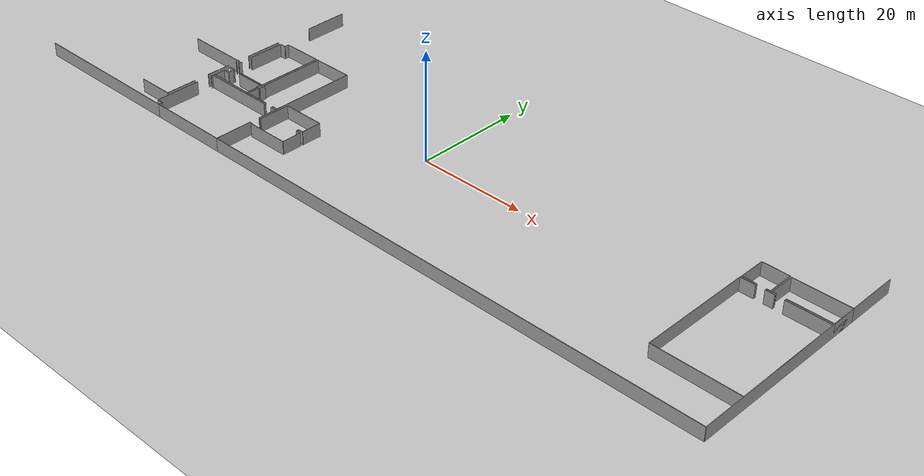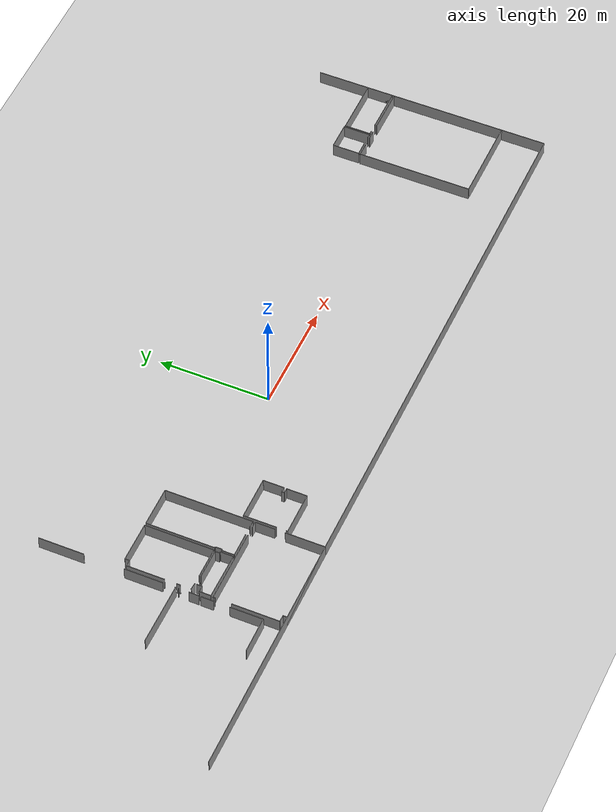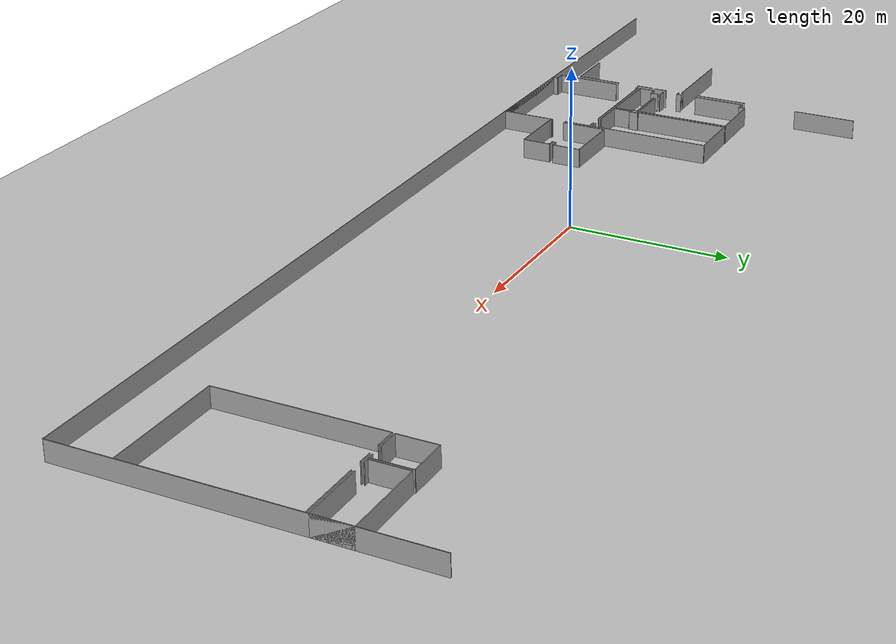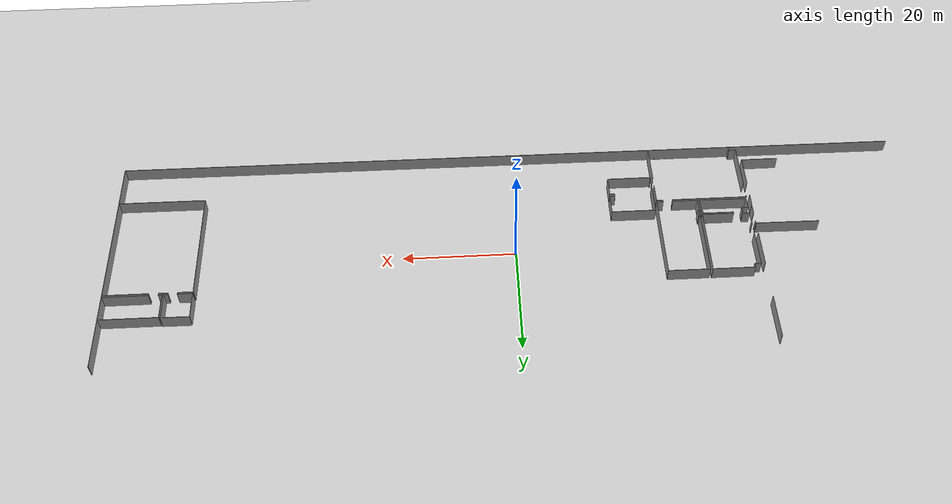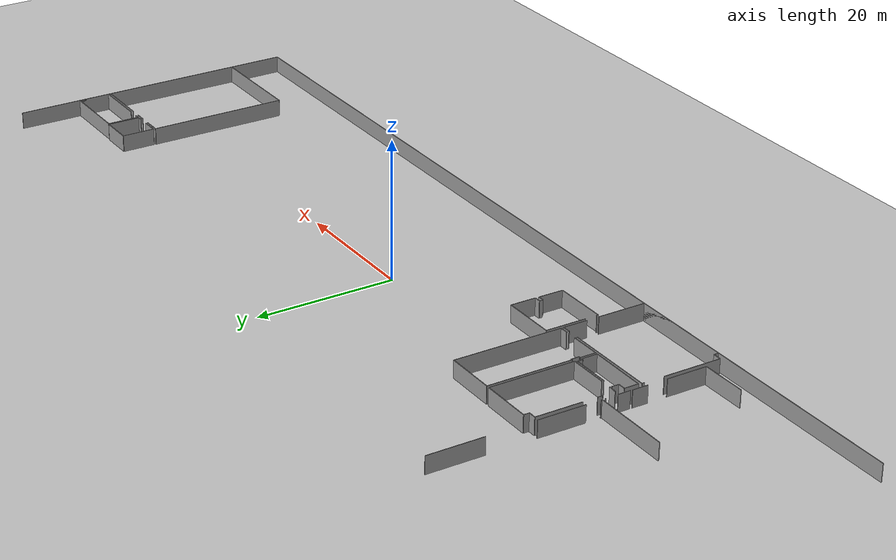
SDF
<sdf version="1.6">
 <world name="default">
  <model name="ground_plane">
   <static>1</static>
   <link name="link">
    <collision name="collision">
     <geometry><plane><normal>0 0 1</normal><size>100 100</size></plane></geometry>
     <surface><friction><ode><mu>100</mu><mu2>50</mu2></ode></friction></surface>
    </collision>
    <visual name="visual">
     <cast_shadows>0</cast_shadows>
     <geometry><plane><normal>0 0 1</normal><size>100 100</size></plane></geometry>
     <material>
      <script><uri>file://media/materials/scripts/gazebo.material</uri><name>Gazebo/Grey</name></script>
     </material>
    </visual>
   </link>
  </model>
  <model name="0510035738_A_40_1_101">
   <static>1</static>
   <link name="Wall_17">
    <collision name="Wall_17_Collision">
     <geometry><box><size>8.17298779791 0.1 2.5</size></box></geometry>
     <pose>4.08649389896 0 1.25 0 0 0</pose>
    </collision>
    <visual name="Wall_17_Visual">
     <pose>4.08649389896 0 1.25 0 0 0</pose>
     <geometry><box><size>8.17298779791 0.1 2.5</size></box></geometry>
     <material>
      <script><uri>file://media/materials/scripts/gazebo.material</uri><name>Gazebo/Grey</name></script>
      <ambient>1 1 1 1</ambient>
     </material>
    </visual>
    <pose>27.8733318943 -0.0208235458435 0 0 0 -1.57079632679</pose>
   </link>
   <link name="Wall_46">
    <collision name="Wall_46_Collision">
     <geometry><box><size>0.121639981208 0.1 2.5</size></box></geometry>
     <pose>0.060819990604 0 1.25 0 0 0</pose>
    </collision>
    <visual name="Wall_46_Visual">
     <pose>0.060819990604 0 1.25 0 0 0</pose>
     <geometry><box><size>0.121639981208 0.1 2.5</size></box></geometry>
     <material>
      <script><uri>file://media/materials/scripts/gazebo.material</uri><name>Gazebo/Grey</name></script>
      <ambient>1 1 1 1</ambient>
     </material>
    </visual>
    <pose>27.8941554402 -24.8925174905 0 0 0 -1.57079632679</pose>
   </link>
   <link name="Wall_47">
    <collision name="Wall_47_Collision">
     <geometry><box><size>1.7900631055 0.1 2.5</size></box></geometry>
     <pose>0.895031552751 0 1.25 0 0 0</pose>
    </collision>
    <visual name="Wall_47_Visual">
     <pose>0.895031552751 0 1.25 0 0 0</pose>
     <geometry><box><size>1.7900631055 0.1 2.5</size></box></geometry>
     <material>
      <script><uri>file://media/materials/scripts/gazebo.material</uri><name>Gazebo/Grey</name></script>
      <ambient>1 1 1 1</ambient>
     </material>
    </visual>
    <pose>27.8941554402 -26.7706997473 0 0 0 -1.57079632679</pose>
   </link>
   <link name="Wall_52">
    <collision name="Wall_52_Collision">
     <geometry><box><size>6.86770699747 0.1 2.5</size></box></geometry>
     <pose>3.43385349874 0 1.25 0 0 0</pose>
    </collision>
    <visual name="Wall_52_Visual">
     <pose>3.43385349874 0 1.25 0 0 0</pose>
     <geometry><box><size>6.86770699747 0.1 2.5</size></box></geometry>
     <material>
      <script><uri>file://media/materials/scripts/gazebo.material</uri><name>Gazebo/Grey</name></script>
      <ambient>1 1 1 1</ambient>
     </material>
    </visual>
    <pose>27.8796805363 -15.3240981754 0 0 0 -1.57079632679</pose>
   </link>
   <link name="Wall_53">
    <collision name="Wall_53_Collision">
     <geometry><box><size>0.166842312429 0.1 2.5</size></box></geometry>
     <pose>0.0834211562147 0 1.25 0 0 0</pose>
    </collision>
    <visual name="Wall_53_Visual">
     <pose>0.0834211562147 0 1.25 0 0 0</pose>
     <geometry><box><size>0.166842312429 0.1 2.5</size></box></geometry>
     <material>
      <script><uri>file://media/materials/scripts/gazebo.material</uri><name>Gazebo/Grey</name></script>
      <ambient>1 1 1 1</ambient>
     </material>
    </visual>
    <pose>27.8796805363 -24.3031095649 0 0 0 -1.57079632679</pose>
   </link>
   <link name="Wall_54">
    <collision name="Wall_54_Collision">
     <geometry><box><size>11.296407675 0.1 2.5</size></box></geometry>
     <pose>5.64820383748 0 1.25 0 0 0</pose>
    </collision>
    <visual name="Wall_54_Visual">
     <pose>5.64820383748 0 1.25 0 0 0</pose>
     <geometry><box><size>11.296407675 0.1 2.5</size></box></geometry>
     <material>
      <script><uri>file://media/materials/scripts/gazebo.material</uri><name>Gazebo/Grey</name></script>
      <ambient>1 1 1 1</ambient>
     </material>
    </visual>
    <pose>27.8796805363 -24.4699518773 0 0 0 3.13657954449</pose>
   </link>
   <link name="Wall_55">
    <collision name="Wall_55_Collision">
     <geometry><box><size>0.66787714108 0.1 2.5</size></box></geometry>
     <pose>0.33393857054 0 1.25 0 0 0</pose>
    </collision>
    <visual name="Wall_55_Visual">
     <pose>0.33393857054 0 1.25 0 0 0</pose>
     <geometry><box><size>0.66787714108 0.1 2.5</size></box></geometry>
     <material>
      <script><uri>file://media/materials/scripts/gazebo.material</uri><name>Gazebo/Grey</name></script>
      <ambient>1 1 1 1</ambient>
     </material>
    </visual>
    <pose>28.5909823889 -24.9709867059 0 0 0 1.57079632679</pose>
   </link>
   <link name="Wall_56">
    <collision name="Wall_56_Collision">
     <geometry><box><size>6.76231953985 0.1 2.5</size></box></geometry>
     <pose>3.38115976993 0 1.25 0 0 0</pose>
    </collision>
    <visual name="Wall_56_Visual">
     <pose>3.38115976993 0 1.25 0 0 0</pose>
     <geometry><box><size>6.76231953985 0.1 2.5</size></box></geometry>
     <material>
      <script><uri>file://media/materials/scripts/gazebo.material</uri><name>Gazebo/Grey</name></script>
      <ambient>1 1 1 1</ambient>
     </material>
    </visual>
    <pose>28.5909823889 -22.1991695976 0 0 0 1.57079632679</pose>
   </link>
   <link name="Wall_57">
    <collision name="Wall_57_Collision">
     <geometry><box><size>1.11355181127 0.1 2.5</size></box></geometry>
     <pose>0.556775905634 0 1.25 0 0 0</pose>
    </collision>
    <visual name="Wall_57_Visual">
     <pose>0.556775905634 0 1.25 0 0 0</pose>
     <geometry><box><size>1.11355181127 0.1 2.5</size></box></geometry>
     <material>
      <script><uri>file://media/materials/scripts/gazebo.material</uri><name>Gazebo/Grey</name></script>
      <ambient>1 1 1 1</ambient>
     </material>
    </visual>
    <pose>28.5909823889 -15.4368500578 0 0 0 0.0</pose>
   </link>
   <link name="Wall_58">
    <collision name="Wall_58_Collision">
     <geometry><box><size>0.818212984243 0.1 2.5</size></box></geometry>
     <pose>0.409106492121 0 1.25 0 0 0</pose>
    </collision>
    <visual name="Wall_58_Visual">
     <pose>0.409106492121 0 1.25 0 0 0</pose>
     <geometry><box><size>0.818212984243 0.1 2.5</size></box></geometry>
     <material>
      <script><uri>file://media/materials/scripts/gazebo.material</uri><name>Gazebo/Grey</name></script>
      <ambient>1 1 1 1</ambient>
     </material>
    </visual>
    <pose>29.7045342001 -15.4368500578 0 0 0 1.57079632679</pose>
   </link>
   <link name="Wall_59">
    <collision name="Wall_59_Collision">
     <geometry><box><size>7.3984534708 0.1 2.5</size></box></geometry>
     <pose>3.6992267354 0 1.25 0 0 0</pose>
    </collision>
    <visual name="Wall_59_Visual">
     <pose>3.6992267354 0 1.25 0 0 0</pose>
     <geometry><box><size>7.3984534708 0.1 2.5</size></box></geometry>
     <material>
      <script><uri>file://media/materials/scripts/gazebo.material</uri><name>Gazebo/Grey</name></script>
      <ambient>1 1 1 1</ambient>
     </material>
    </visual>
    <pose>29.7045342001 -14.6186370735 0 0 0 0.0</pose>
   </link>
   <link name="Wall_60">
    <collision name="Wall_60_Collision">
     <geometry><box><size>12.3460771741 0.1 2.5</size></box></geometry>
     <pose>6.17303858705 0 1.25 0 0 0</pose>
    </collision>
    <visual name="Wall_60_Visual">
     <pose>6.17303858705 0 1.25 0 0 0</pose>
     <geometry><box><size>12.3460771741 0.1 2.5</size></box></geometry>
     <material>
      <script><uri>file://media/materials/scripts/gazebo.material</uri><name>Gazebo/Grey</name></script>
      <ambient>1 1 1 1</ambient>
     </material>
    </visual>
    <pose>37.1029876709 -14.6186370735 0 0 0 -1.57079632679</pose>
   </link>
   <link name="Wall_61">
    <collision name="Wall_61_Collision">
     <geometry><box><size>5.66095712127 0.1 2.5</size></box></geometry>
     <pose>2.83047856064 0 1.25 0 0 0</pose>
    </collision>
    <visual name="Wall_61_Visual">
     <pose>2.83047856064 0 1.25 0 0 0</pose>
     <geometry><box><size>5.66095712127 0.1 2.5</size></box></geometry>
     <material>
      <script><uri>file://media/materials/scripts/gazebo.material</uri><name>Gazebo/Grey</name></script>
      <ambient>1 1 1 1</ambient>
     </material>
    </visual>
    <pose>37.1029876709 -26.9647142476 0 0 0 3.14159265359</pose>
   </link>
   <link name="Wall_62">
    <collision name="Wall_62_Collision">
     <geometry><box><size>1.23802246582 0.1 2.5</size></box></geometry>
     <pose>0.619011232909 0 1.25 0 0 0</pose>
    </collision>
    <visual name="Wall_62_Visual">
     <pose>0.619011232909 0 1.25 0 0 0</pose>
     <geometry><box><size>1.23802246582 0.1 2.5</size></box></geometry>
     <material>
      <script><uri>file://media/materials/scripts/gazebo.material</uri><name>Gazebo/Grey</name></script>
      <ambient>1 1 1 1</ambient>
     </material>
    </visual>
    <pose>29.8251583986 -26.9647142476 0 0 0 3.06274411815</pose>
   </link>
   <link name="Wall_63">
    <collision name="Wall_63_Collision">
     <geometry><box><size>2.06153103851 0.1 2.5</size></box></geometry>
     <pose>1.03076551926 0 1.25 0 0 0</pose>
    </collision>
    <visual name="Wall_63_Visual">
     <pose>1.03076551926 0 1.25 0 0 0</pose>
     <geometry><box><size>2.06153103851 0.1 2.5</size></box></geometry>
     <material>
      <script><uri>file://media/materials/scripts/gazebo.material</uri><name>Gazebo/Grey</name></script>
      <ambient>1 1 1 1</ambient>
     </material>
    </visual>
    <pose>28.6780857575 -30.3081630839 0 0 0 1.57079632679</pose>
   </link>
   <link name="Wall_64">
    <collision name="Wall_64_Collision">
     <geometry><box><size>1.10364792971 0.1 2.5</size></box></geometry>
     <pose>0.551823964854 0 1.25 0 0 0</pose>
    </collision>
    <visual name="Wall_64_Visual">
     <pose>0.551823964854 0 1.25 0 0 0</pose>
     <geometry><box><size>1.10364792971 0.1 2.5</size></box></geometry>
     <material>
      <script><uri>file://media/materials/scripts/gazebo.material</uri><name>Gazebo/Grey</name></script>
      <ambient>1 1 1 1</ambient>
     </material>
    </visual>
    <pose>28.6780857575 -28.2466320454 0 0 0 0.0</pose>
   </link>
   <link name="Wall_65">
    <collision name="Wall_65_Collision">
     <geometry><box><size>1.0020696573 0.1 2.5</size></box></geometry>
     <pose>0.50103482865 0 1.25 0 0 0</pose>
    </collision>
    <visual name="Wall_65_Visual">
     <pose>0.50103482865 0 1.25 0 0 0</pose>
     <geometry><box><size>1.0020696573 0.1 2.5</size></box></geometry>
     <material>
      <script><uri>file://media/materials/scripts/gazebo.material</uri><name>Gazebo/Grey</name></script>
      <ambient>1 1 1 1</ambient>
     </material>
    </visual>
    <pose>29.7817336872 -28.2466320454 0 0 0 1.57079632679</pose>
   </link>
   <link name="Wall_66">
    <collision name="Wall_66_Collision">
     <geometry><box><size>5.4933529718 0.1 2.5</size></box></geometry>
     <pose>2.7466764859 0 1.25 0 0 0</pose>
    </collision>
    <visual name="Wall_66_Visual">
     <pose>2.7466764859 0 1.25 0 0 0</pose>
     <geometry><box><size>5.4933529718 0.1 2.5</size></box></geometry>
     <material>
      <script><uri>file://media/materials/scripts/gazebo.material</uri><name>Gazebo/Grey</name></script>
      <ambient>1 1 1 1</ambient>
     </material>
    </visual>
    <pose>31.4245082977 -27.2445623881 0 0 0 0.0</pose>
   </link>
   <link name="Wall_67">
    <collision name="Wall_67_Collision">
     <geometry><box><size>0.781898751857 0.1 2.5</size></box></geometry>
     <pose>0.390949375928 0 1.25 0 0 0</pose>
    </collision>
    <visual name="Wall_67_Visual">
     <pose>0.390949375928 0 1.25 0 0 0</pose>
     <geometry><box><size>0.781898751857 0.1 2.5</size></box></geometry>
     <material>
      <script><uri>file://media/materials/scripts/gazebo.material</uri><name>Gazebo/Grey</name></script>
      <ambient>1 1 1 1</ambient>
     </material>
    </visual>
    <pose>36.9178612695 -27.2445623881 0 0 0 -1.57079632679</pose>
   </link>
   <link name="Wall_68">
    <collision name="Wall_68_Collision">
     <geometry><box><size>0.250390441485 0.1 2.5</size></box></geometry>
     <pose>0.125195220742 0 1.25 0 0 0</pose>
    </collision>
    <visual name="Wall_68_Visual">
     <pose>0.125195220742 0 1.25 0 0 0</pose>
     <geometry><box><size>0.250390441485 0.1 2.5</size></box></geometry>
     <material>
      <script><uri>file://media/materials/scripts/gazebo.material</uri><name>Gazebo/Grey</name></script>
      <ambient>1 1 1 1</ambient>
     </material>
    </visual>
    <pose>36.9178612695 -28.02646114 0 0 0 0.0</pose>
   </link>
   <link name="Wall_69">
    <collision name="Wall_69_Collision">
     <geometry><box><size>2.35433040873 0.1 2.5</size></box></geometry>
     <pose>1.17716520436 0 1.25 0 0 0</pose>
    </collision>
    <visual name="Wall_69_Visual">
     <pose>1.17716520436 0 1.25 0 0 0</pose>
     <geometry><box><size>2.35433040873 0.1 2.5</size></box></geometry>
     <material>
      <script><uri>file://media/materials/scripts/gazebo.material</uri><name>Gazebo/Grey</name></script>
      <ambient>1 1 1 1</ambient>
     </material>
    </visual>
    <pose>37.168251711 -28.02646114 0 0 0 -1.57079632679</pose>
   </link>
   <link name="Wall_70">
    <collision name="Wall_70_Collision">
     <geometry><box><size>8.4904765951 0.1 2.5</size></box></geometry>
     <pose>4.24523829755 0 1.25 0 0 0</pose>
    </collision>
    <visual name="Wall_70_Visual">
     <pose>4.24523829755 0 1.25 0 0 0</pose>
     <geometry><box><size>8.4904765951 0.1 2.5</size></box></geometry>
     <material>
      <script><uri>file://media/materials/scripts/gazebo.material</uri><name>Gazebo/Grey</name></script>
      <ambient>1 1 1 1</ambient>
     </material>
    </visual>
    <pose>37.168251711 -30.3807915487 0 0 0 3.13303843997</pose>
   </link>
   <link name="Wall_79">
    <collision name="Wall_79_Collision">
     <geometry><box><size>2.28982820575 0.1 2.5</size></box></geometry>
     <pose>1.14491410287 0 1.25 0 0 0</pose>
    </collision>
    <visual name="Wall_79_Visual">
     <pose>1.14491410287 0 1.25 0 0 0</pose>
     <geometry><box><size>2.28982820575 0.1 2.5</size></box></geometry>
     <material>
      <script><uri>file://media/materials/scripts/gazebo.material</uri><name>Gazebo/Grey</name></script>
      <ambient>1 1 1 1</ambient>
     </material>
    </visual>
    <pose>27.8606346103 -28.8446741242 0 0 0 -1.57079632679</pose>
   </link>
   <link name="Wall_80">
    <collision name="Wall_80_Collision">
     <geometry><box><size>5.83084678187 0.1 2.5</size></box></geometry>
     <pose>2.91542339094 0 1.25 0 0 0</pose>
    </collision>
    <visual name="Wall_80_Visual">
     <pose>2.91542339094 0 1.25 0 0 0</pose>
     <geometry><box><size>5.83084678187 0.1 2.5</size></box></geometry>
     <material>
      <script><uri>file://media/materials/scripts/gazebo.material</uri><name>Gazebo/Grey</name></script>
      <ambient>1 1 1 1</ambient>
     </material>
    </visual>
    <pose>27.8606346103 -33.9672664017 0 0 0 -1.57079632679</pose>
   </link>
   <link name="Wall_81">
    <collision name="Wall_81_Collision">
     <geometry><box><size>6.62807762516 0.1 2.5</size></box></geometry>
     <pose>3.31403881258 0 1.25 0 0 0</pose>
    </collision>
    <visual name="Wall_81_Visual">
     <pose>3.31403881258 0 1.25 0 0 0</pose>
     <geometry><box><size>6.62807762516 0.1 2.5</size></box></geometry>
     <material>
      <script><uri>file://media/materials/scripts/gazebo.material</uri><name>Gazebo/Grey</name></script>
      <ambient>1 1 1 1</ambient>
     </material>
    </visual>
    <pose>27.8606346103 -39.7981131836 0 0 0 -3.13622872036</pose>
   </link>
   <link name="Wall_94">
    <collision name="Wall_94_Collision">
     <geometry><box><size>8.39874550834 0.1 2.5</size></box></geometry>
     <pose>4.19937275417 0 1.25 0 0 0</pose>
    </collision>
    <visual name="Wall_94_Visual">
     <pose>4.19937275417 0 1.25 0 0 0</pose>
     <geometry><box><size>8.39874550834 0.1 2.5</size></box></geometry>
     <material>
      <script><uri>file://media/materials/scripts/gazebo.material</uri><name>Gazebo/Grey</name></script>
      <ambient>1 1 1 1</ambient>
     </material>
    </visual>
    <pose>28.5358761761 -42.3863275645 0 0 0 1.57079632679</pose>
   </link>
   <link name="Wall_95">
    <collision name="Wall_95_Collision">
     <geometry><box><size>0.345620071867 0.1 2.5</size></box></geometry>
     <pose>0.172810035933 0 1.25 0 0 0</pose>
    </collision>
    <visual name="Wall_95_Visual">
     <pose>0.172810035933 0 1.25 0 0 0</pose>
     <geometry><box><size>0.345620071867 0.1 2.5</size></box></geometry>
     <material>
      <script><uri>file://media/materials/scripts/gazebo.material</uri><name>Gazebo/Grey</name></script>
      <ambient>1 1 1 1</ambient>
     </material>
    </visual>
    <pose>28.5358761761 -31.0738093122 0 0 0 1.57079632679</pose>
   </link>
   <link name="Wall_96">
    <collision name="Wall_96_Collision">
     <geometry><box><size>13.465469736 0.1 2.5</size></box></geometry>
     <pose>6.73273486801 0 1.25 0 0 0</pose>
    </collision>
    <visual name="Wall_96_Visual">
     <pose>6.73273486801 0 1.25 0 0 0</pose>
     <geometry><box><size>13.465469736 0.1 2.5</size></box></geometry>
     <material>
      <script><uri>file://media/materials/scripts/gazebo.material</uri><name>Gazebo/Grey</name></script>
      <ambient>1 1 1 1</ambient>
     </material>
    </visual>
    <pose>28.5358761761 -30.7281892403 0 0 0 0.0</pose>
   </link>
   <link name="Wall_97">
    <collision name="Wall_97_Collision">
     <geometry><box><size>1.20954327869 0.1 2.5</size></box></geometry>
     <pose>0.604771639346 0 1.25 0 0 0</pose>
    </collision>
    <visual name="Wall_97_Visual">
     <pose>0.604771639346 0 1.25 0 0 0</pose>
     <geometry><box><size>1.20954327869 0.1 2.5</size></box></geometry>
     <material>
      <script><uri>file://media/materials/scripts/gazebo.material</uri><name>Gazebo/Grey</name></script>
      <ambient>1 1 1 1</ambient>
     </material>
    </visual>
    <pose>43.6545322955 -30.7281892403 0 0 0 0.0</pose>
   </link>
   <link name="Wall_98">
    <collision name="Wall_98_Collision">
     <geometry><box><size>3.53314626001 0.1 2.5</size></box></geometry>
     <pose>1.76657313001 0 1.25 0 0 0</pose>
    </collision>
    <visual name="Wall_98_Visual">
     <pose>1.76657313001 0 1.25 0 0 0</pose>
     <geometry><box><size>3.53314626001 0.1 2.5</size></box></geometry>
     <material>
      <script><uri>file://media/materials/scripts/gazebo.material</uri><name>Gazebo/Grey</name></script>
      <ambient>1 1 1 1</ambient>
     </material>
    </visual>
    <pose>44.8640755742 -30.7281892403 0 0 0 -1.57079632679</pose>
   </link>
   <link name="Wall_99">
    <collision name="Wall_99_Collision">
     <geometry><box><size>7.04039006057 0.1 2.5</size></box></geometry>
     <pose>3.52019503028 0 1.25 0 0 0</pose>
    </collision>
    <visual name="Wall_99_Visual">
     <pose>3.52019503028 0 1.25 0 0 0</pose>
     <geometry><box><size>7.04039006057 0.1 2.5</size></box></geometry>
     <material>
      <script><uri>file://media/materials/scripts/gazebo.material</uri><name>Gazebo/Grey</name></script>
      <ambient>1 1 1 1</ambient>
     </material>
    </visual>
    <pose>44.8640755742 -36.0854273271 0 0 0 -1.57079632679</pose>
   </link>
   <link name="Wall_100">
    <collision name="Wall_100_Collision">
     <geometry><box><size>15.1090061836 0.1 2.5</size></box></geometry>
     <pose>7.55450309179 0 1.25 0 0 0</pose>
    </collision>
    <visual name="Wall_100_Visual">
     <pose>7.55450309179 0 1.25 0 0 0</pose>
     <geometry><box><size>15.1090061836 0.1 2.5</size></box></geometry>
     <material>
      <script><uri>file://media/materials/scripts/gazebo.material</uri><name>Gazebo/Grey</name></script>
      <ambient>1 1 1 1</ambient>
     </material>
    </visual>
    <pose>44.8640755742 -43.1258173877 0 0 0 3.14159265359</pose>
   </link>
   <link name="Wall_101">
    <collision name="Wall_101_Collision">
     <geometry><box><size>0.706476884594 0.1 2.5</size></box></geometry>
     <pose>0.353238442297 0 1.25 0 0 0</pose>
    </collision>
    <visual name="Wall_101_Visual">
     <pose>0.353238442297 0 1.25 0 0 0</pose>
     <geometry><box><size>0.706476884594 0.1 2.5</size></box></geometry>
     <material>
      <script><uri>file://media/materials/scripts/gazebo.material</uri><name>Gazebo/Grey</name></script>
      <ambient>1 1 1 1</ambient>
     </material>
    </visual>
    <pose>29.7550693907 -43.1258173877 0 0 0 1.57079632679</pose>
   </link>
   <link name="Wall_102">
    <collision name="Wall_102_Collision">
     <geometry><box><size>1.21964008977 0.1 2.5</size></box></geometry>
     <pose>0.609820044884 0 1.25 0 0 0</pose>
    </collision>
    <visual name="Wall_102_Visual">
     <pose>0.609820044884 0 1.25 0 0 0</pose>
     <geometry><box><size>1.21964008977 0.1 2.5</size></box></geometry>
     <material>
      <script><uri>file://media/materials/scripts/gazebo.material</uri><name>Gazebo/Grey</name></script>
      <ambient>1 1 1 1</ambient>
     </material>
    </visual>
    <pose>29.7550693907 -42.4193405031 0 0 0 3.11452157633</pose>
   </link>
   <link name="Wall_103">
    <collision name="Wall_103_Collision">
     <geometry><box><size>2.29744657618 0.1 2.5</size></box></geometry>
     <pose>1.14872328809 0 1.25 0 0 0</pose>
    </collision>
    <visual name="Wall_103_Visual">
     <pose>1.14872328809 0 1.25 0 0 0</pose>
     <geometry><box><size>2.29744657618 0.1 2.5</size></box></geometry>
     <material>
      <script><uri>file://media/materials/scripts/gazebo.material</uri><name>Gazebo/Grey</name></script>
      <ambient>1 1 1 1</ambient>
     </material>
    </visual>
    <pose>37.5059994667 -30.3843467882 0 0 0 1.57079632679</pose>
   </link>
   <link name="Wall_104">
    <collision name="Wall_104_Collision">
     <geometry><box><size>0.232360298132 0.1 2.5</size></box></geometry>
     <pose>0.116180149066 0 1.25 0 0 0</pose>
    </collision>
    <visual name="Wall_104_Visual">
     <pose>0.116180149066 0 1.25 0 0 0</pose>
     <geometry><box><size>0.232360298132 0.1 2.5</size></box></geometry>
     <material>
      <script><uri>file://media/materials/scripts/gazebo.material</uri><name>Gazebo/Grey</name></script>
      <ambient>1 1 1 1</ambient>
     </material>
    </visual>
    <pose>37.5059994667 -28.086900212 0 0 0 0.0</pose>
   </link>
   <link name="Wall_105">
    <collision name="Wall_105_Collision">
     <geometry><box><size>1.1907512983 0.1 2.5</size></box></geometry>
     <pose>0.595375649149 0 1.25 0 0 0</pose>
    </collision>
    <visual name="Wall_105_Visual">
     <pose>0.595375649149 0 1.25 0 0 0</pose>
     <geometry><box><size>1.1907512983 0.1 2.5</size></box></geometry>
     <material>
      <script><uri>file://media/materials/scripts/gazebo.material</uri><name>Gazebo/Grey</name></script>
      <ambient>1 1 1 1</ambient>
     </material>
    </visual>
    <pose>37.7383597648 -28.086900212 0 0 0 1.57079632679</pose>
   </link>
   <link name="Wall_106">
    <collision name="Wall_106_Collision">
     <geometry><box><size>0.203410490496 0.1 2.5</size></box></geometry>
     <pose>0.101705245248 0 1.25 0 0 0</pose>
    </collision>
    <visual name="Wall_106_Visual">
     <pose>0.101705245248 0 1.25 0 0 0</pose>
     <geometry><box><size>0.203410490496 0.1 2.5</size></box></geometry>
     <material>
      <script><uri>file://media/materials/scripts/gazebo.material</uri><name>Gazebo/Grey</name></script>
      <ambient>1 1 1 1</ambient>
     </material>
    </visual>
    <pose>37.7383597648 -26.8961489137 0 0 0 3.14159265359</pose>
   </link>
   <link name="Wall_107">
    <collision name="Wall_107_Collision">
     <geometry><box><size>12.2632908821 0.1 2.5</size></box></geometry>
     <pose>6.13164544104 0 1.25 0 0 0</pose>
    </collision>
    <visual name="Wall_107_Visual">
     <pose>6.13164544104 0 1.25 0 0 0</pose>
     <geometry><box><size>12.2632908821 0.1 2.5</size></box></geometry>
     <material>
      <script><uri>file://media/materials/scripts/gazebo.material</uri><name>Gazebo/Grey</name></script>
      <ambient>1 1 1 1</ambient>
     </material>
    </visual>
    <pose>37.5349492744 -26.8961489137 0 0 0 1.57079632679</pose>
   </link>
   <link name="Wall_108">
    <collision name="Wall_108_Collision">
     <geometry><box><size>7.30703302564 0.1 2.5</size></box></geometry>
     <pose>3.65351651282 0 1.25 0 0 0</pose>
    </collision>
    <visual name="Wall_108_Visual">
     <pose>3.65351651282 0 1.25 0 0 0</pose>
     <geometry><box><size>7.30703302564 0.1 2.5</size></box></geometry>
     <material>
      <script><uri>file://media/materials/scripts/gazebo.material</uri><name>Gazebo/Grey</name></script>
      <ambient>1 1 1 1</ambient>
     </material>
    </visual>
    <pose>37.5349492744 -14.6328580317 0 0 0 0.0</pose>
   </link>
   <link name="Wall_109">
    <collision name="Wall_109_Collision">
     <geometry><box><size>15.7334586132 0.1 2.5</size></box></geometry>
     <pose>7.8667293066 0 1.25 0 0 0</pose>
    </collision>
    <visual name="Wall_109_Visual">
     <pose>7.8667293066 0 1.25 0 0 0</pose>
     <geometry><box><size>15.7334586132 0.1 2.5</size></box></geometry>
     <material>
      <script><uri>file://media/materials/scripts/gazebo.material</uri><name>Gazebo/Grey</name></script>
      <ambient>1 1 1 1</ambient>
     </material>
    </visual>
    <pose>44.8419823 -14.6328580317 0 0 0 -1.57079632679</pose>
   </link>
   <link name="Wall_110">
    <collision name="Wall_110_Collision">
     <geometry><box><size>1.17983163401 0.1 2.5</size></box></geometry>
     <pose>0.589915817007 0 1.25 0 0 0</pose>
    </collision>
    <visual name="Wall_110_Visual">
     <pose>0.589915817007 0 1.25 0 0 0</pose>
     <geometry><box><size>1.17983163401 0.1 2.5</size></box></geometry>
     <material>
      <script><uri>file://media/materials/scripts/gazebo.material</uri><name>Gazebo/Grey</name></script>
      <ambient>1 1 1 1</ambient>
     </material>
    </visual>
    <pose>44.8419823 -30.3663166449 0 0 0 3.14159265359</pose>
   </link>
   <link name="Wall_111">
    <collision name="Wall_111_Collision">
     <geometry><box><size>4.48268542168 0.1 2.5</size></box></geometry>
     <pose>2.24134271084 0 1.25 0 0 0</pose>
    </collision>
    <visual name="Wall_111_Visual">
     <pose>2.24134271084 0 1.25 0 0 0</pose>
     <geometry><box><size>4.48268542168 0.1 2.5</size></box></geometry>
     <material>
      <script><uri>file://media/materials/scripts/gazebo.material</uri><name>Gazebo/Grey</name></script>
      <ambient>1 1 1 1</ambient>
     </material>
    </visual>
    <pose>41.9886486281 -30.3663166449 0 0 0 -3.13757046816</pose>
   </link>
   <link name="Wall_112">
    <collision name="Wall_112_Collision">
     <geometry><box><size>0.267150856432 0.1 2.5</size></box></geometry>
     <pose>0.133575428216 0 1.25 0 0 0</pose>
    </collision>
    <visual name="Wall_112_Visual">
     <pose>0.133575428216 0 1.25 0 0 0</pose>
     <geometry><box><size>0.267150856432 0.1 2.5</size></box></geometry>
     <material>
      <script><uri>file://media/materials/scripts/gazebo.material</uri><name>Gazebo/Grey</name></script>
      <ambient>1 1 1 1</ambient>
     </material>
    </visual>
    <pose>45.2998463629 -36.32515205 0 0 0 1.57079632679</pose>
   </link>
   <link name="Wall_113">
    <collision name="Wall_113_Collision">
     <geometry><box><size>5.87401754765 0.1 2.5</size></box></geometry>
     <pose>2.93700877382 0 1.25 0 0 0</pose>
    </collision>
    <visual name="Wall_113_Visual">
     <pose>2.93700877382 0 1.25 0 0 0</pose>
     <geometry><box><size>5.87401754765 0.1 2.5</size></box></geometry>
     <material>
      <script><uri>file://media/materials/scripts/gazebo.material</uri><name>Gazebo/Grey</name></script>
      <ambient>1 1 1 1</ambient>
     </material>
    </visual>
    <pose>45.2998463629 -34.3151719847 0 0 0 1.57079632679</pose>
   </link>
   <link name="Wall_114">
    <collision name="Wall_114_Collision">
     <geometry><box><size>7.86241223002 0.1 2.5</size></box></geometry>
     <pose>3.93120611501 0 1.25 0 0 0</pose>
    </collision>
    <visual name="Wall_114_Visual">
     <pose>3.93120611501 0 1.25 0 0 0</pose>
     <geometry><box><size>7.86241223002 0.1 2.5</size></box></geometry>
     <material>
      <script><uri>file://media/materials/scripts/gazebo.material</uri><name>Gazebo/Grey</name></script>
      <ambient>1 1 1 1</ambient>
     </material>
    </visual>
    <pose>45.2998463629 -28.4411544371 0 0 0 0.0</pose>
   </link>
   <link name="Wall_115">
    <collision name="Wall_115_Collision">
     <geometry><box><size>3.709892454 0.1 2.5</size></box></geometry>
     <pose>1.854946227 0 1.25 0 0 0</pose>
    </collision>
    <visual name="Wall_115_Visual">
     <pose>1.854946227 0 1.25 0 0 0</pose>
     <geometry><box><size>3.709892454 0.1 2.5</size></box></geometry>
     <material>
      <script><uri>file://media/materials/scripts/gazebo.material</uri><name>Gazebo/Grey</name></script>
      <ambient>1 1 1 1</ambient>
     </material>
    </visual>
    <pose>53.1622585929 -28.4411544371 0 0 0 -1.57079632679</pose>
   </link>
   <link name="Wall_116">
    <collision name="Wall_116_Collision">
     <geometry><box><size>0.933504323425 0.1 2.5</size></box></geometry>
     <pose>0.466752161713 0 1.25 0 0 0</pose>
    </collision>
    <visual name="Wall_116_Visual">
     <pose>0.466752161713 0 1.25 0 0 0</pose>
     <geometry><box><size>0.933504323425 0.1 2.5</size></box></geometry>
     <material>
      <script><uri>file://media/materials/scripts/gazebo.material</uri><name>Gazebo/Grey</name></script>
      <ambient>1 1 1 1</ambient>
     </material>
    </visual>
    <pose>53.1622585929 -32.1510468911 0 0 0 3.14159265359</pose>
   </link>
   <link name="Wall_117">
    <collision name="Wall_117_Collision">
     <geometry><box><size>0.509415036124 0.1 2.5</size></box></geometry>
     <pose>0.254707518062 0 1.25 0 0 0</pose>
    </collision>
    <visual name="Wall_117_Visual">
     <pose>0.254707518062 0 1.25 0 0 0</pose>
     <geometry><box><size>0.509415036124 0.1 2.5</size></box></geometry>
     <material>
      <script><uri>file://media/materials/scripts/gazebo.material</uri><name>Gazebo/Grey</name></script>
      <ambient>1 1 1 1</ambient>
     </material>
    </visual>
    <pose>52.2287542695 -32.1510468911 0 0 0 -1.57079632679</pose>
   </link>
   <link name="Wall_118">
    <collision name="Wall_118_Collision">
     <geometry><box><size>0.899983493531 0.1 2.5</size></box></geometry>
     <pose>0.449991746765 0 1.25 0 0 0</pose>
    </collision>
    <visual name="Wall_118_Visual">
     <pose>0.449991746765 0 1.25 0 0 0</pose>
     <geometry><box><size>0.899983493531 0.1 2.5</size></box></geometry>
     <material>
      <script><uri>file://media/materials/scripts/gazebo.material</uri><name>Gazebo/Grey</name></script>
      <ambient>1 1 1 1</ambient>
     </material>
    </visual>
    <pose>52.2287542695 -32.6604619272 0 0 0 0.0</pose>
   </link>
   <link name="Wall_119">
    <collision name="Wall_119_Collision">
     <geometry><box><size>3.6443744683 0.1 2.5</size></box></geometry>
     <pose>1.82218723415 0 1.25 0 0 0</pose>
    </collision>
    <visual name="Wall_119_Visual">
     <pose>1.82218723415 0 1.25 0 0 0</pose>
     <geometry><box><size>3.6443744683 0.1 2.5</size></box></geometry>
     <material>
      <script><uri>file://media/materials/scripts/gazebo.material</uri><name>Gazebo/Grey</name></script>
      <ambient>1 1 1 1</ambient>
     </material>
    </visual>
    <pose>53.128737763 -32.6604619272 0 0 0 -1.57079632679</pose>
   </link>
   <link name="Wall_120">
    <collision name="Wall_120_Collision">
     <geometry><box><size>7.82891775923 0.1 2.5</size></box></geometry>
     <pose>3.91445887962 0 1.25 0 0 0</pose>
    </collision>
    <visual name="Wall_120_Visual">
     <pose>3.91445887962 0 1.25 0 0 0</pose>
     <geometry><box><size>7.82891775923 0.1 2.5</size></box></geometry>
     <material>
      <script><uri>file://media/materials/scripts/gazebo.material</uri><name>Gazebo/Grey</name></script>
      <ambient>1 1 1 1</ambient>
     </material>
    </visual>
    <pose>53.128737763 -36.3048363955 0 0 0 -3.13899770012</pose>
   </link>
   <link name="Wall_121">
    <collision name="Wall_121_Collision">
     <geometry><box><size>4.85823482357 0.1 2.5</size></box></geometry>
     <pose>2.42911741179 0 1.25 0 0 0</pose>
    </collision>
    <visual name="Wall_121_Visual">
     <pose>2.42911741179 0 1.25 0 0 0</pose>
     <geometry><box><size>4.85823482357 0.1 2.5</size></box></geometry>
     <material>
      <script><uri>file://media/materials/scripts/gazebo.material</uri><name>Gazebo/Grey</name></script>
      <ambient>1 1 1 1</ambient>
     </material>
    </visual>
    <pose>126.203639042 -14.0993181558 0 0 0 1.57079632679</pose>
   </link>
   <link name="Wall_122">
    <collision name="Wall_122_Collision">
     <geometry><box><size>4.87728074965 0.1 2.5</size></box></geometry>
     <pose>2.43864037482 0 1.25 0 0 0</pose>
    </collision>
    <visual name="Wall_122_Visual">
     <pose>2.43864037482 0 1.25 0 0 0</pose>
     <geometry><box><size>4.87728074965 0.1 2.5</size></box></geometry>
     <material>
      <script><uri>file://media/materials/scripts/gazebo.material</uri><name>Gazebo/Grey</name></script>
      <ambient>1 1 1 1</ambient>
     </material>
    </visual>
    <pose>126.203639042 -9.24108333228 0 0 0 0.0</pose>
   </link>
   <link name="Wall_123">
    <collision name="Wall_123_Collision">
     <geometry><box><size>4.85823482357 0.1 2.5</size></box></geometry>
     <pose>2.42911741179 0 1.25 0 0 0</pose>
    </collision>
    <visual name="Wall_123_Visual">
     <pose>2.42911741179 0 1.25 0 0 0</pose>
     <geometry><box><size>4.85823482357 0.1 2.5</size></box></geometry>
     <material>
      <script><uri>file://media/materials/scripts/gazebo.material</uri><name>Gazebo/Grey</name></script>
      <ambient>1 1 1 1</ambient>
     </material>
    </visual>
    <pose>131.080919791 -9.24108333228 0 0 0 -1.57079632679</pose>
   </link>
   <link name="Wall_124">
    <collision name="Wall_124_Collision">
     <geometry><box><size>0.710540015491 0.1 2.5</size></box></geometry>
     <pose>0.355270007745 0 1.25 0 0 0</pose>
    </collision>
    <visual name="Wall_124_Visual">
     <pose>0.355270007745 0 1.25 0 0 0</pose>
     <geometry><box><size>0.710540015491 0.1 2.5</size></box></geometry>
     <material>
      <script><uri>file://media/materials/scripts/gazebo.material</uri><name>Gazebo/Grey</name></script>
      <ambient>1 1 1 1</ambient>
     </material>
    </visual>
    <pose>131.080919791 -14.0993181558 0 0 0 3.14159265359</pose>
   </link>
   <link name="Wall_125">
    <collision name="Wall_125_Collision">
     <geometry><box><size>2.61132343792 0.1 2.5</size></box></geometry>
     <pose>1.30566171896 0 1.25 0 0 0</pose>
    </collision>
    <visual name="Wall_125_Visual">
     <pose>1.30566171896 0 1.25 0 0 0</pose>
     <geometry><box><size>2.61132343792 0.1 2.5</size></box></geometry>
     <material>
      <script><uri>file://media/materials/scripts/gazebo.material</uri><name>Gazebo/Grey</name></script>
      <ambient>1 1 1 1</ambient>
     </material>
    </visual>
    <pose>128.81496248 -14.0993181558 0 0 0 3.14159265359</pose>
   </link>
   <link name="Wall_126">
    <collision name="Wall_126_Collision">
     <geometry><box><size>4.72186599286 0.1 2.5</size></box></geometry>
     <pose>2.36093299643 0 1.25 0 0 0</pose>
    </collision>
    <visual name="Wall_126_Visual">
     <pose>2.36093299643 0 1.25 0 0 0</pose>
     <geometry><box><size>4.72186599286 0.1 2.5</size></box></geometry>
     <material>
      <script><uri>file://media/materials/scripts/gazebo.material</uri><name>Gazebo/Grey</name></script>
      <ambient>1 1 1 1</ambient>
     </material>
    </visual>
    <pose>131.35264167 -14.0647815432 0 0 0 1.57079632679</pose>
   </link>
   <link name="Wall_127">
    <collision name="Wall_127_Collision">
     <geometry><box><size>10.2015058979 0.1 2.5</size></box></geometry>
     <pose>5.10075294894 0 1.25 0 0 0</pose>
    </collision>
    <visual name="Wall_127_Visual">
     <pose>5.10075294894 0 1.25 0 0 0</pose>
     <geometry><box><size>10.2015058979 0.1 2.5</size></box></geometry>
     <material>
      <script><uri>file://media/materials/scripts/gazebo.material</uri><name>Gazebo/Grey</name></script>
      <ambient>1 1 1 1</ambient>
     </material>
    </visual>
    <pose>131.35264167 -9.34291555036 0 0 0 0.0</pose>
   </link>
   <link name="Wall_128">
    <collision name="Wall_128_Collision">
     <geometry><box><size>4.72186599286 0.1 2.5</size></box></geometry>
     <pose>2.36093299643 0 1.25 0 0 0</pose>
    </collision>
    <visual name="Wall_128_Visual">
     <pose>2.36093299643 0 1.25 0 0 0</pose>
     <geometry><box><size>4.72186599286 0.1 2.5</size></box></geometry>
     <material>
      <script><uri>file://media/materials/scripts/gazebo.material</uri><name>Gazebo/Grey</name></script>
      <ambient>1 1 1 1</ambient>
     </material>
    </visual>
    <pose>141.554147568 -9.34291555036 0 0 0 -1.57079632679</pose>
   </link>
   <link name="Wall_129">
    <collision name="Wall_129_Collision">
     <geometry><box><size>7.9162487144 0.1 2.5</size></box></geometry>
     <pose>3.9581243572 0 1.25 0 0 0</pose>
    </collision>
    <visual name="Wall_129_Visual">
     <pose>3.9581243572 0 1.25 0 0 0</pose>
     <geometry><box><size>7.9162487144 0.1 2.5</size></box></geometry>
     <material>
      <script><uri>file://media/materials/scripts/gazebo.material</uri><name>Gazebo/Grey</name></script>
      <ambient>1 1 1 1</ambient>
     </material>
    </visual>
    <pose>141.554147568 -14.0647815432 0 0 0 3.14159265359</pose>
   </link>
   <link name="Wall_130">
    <collision name="Wall_130_Collision">
     <geometry><box><size>0.649846997727 0.1 2.5</size></box></geometry>
     <pose>0.324923498864 0 1.25 0 0 0</pose>
    </collision>
    <visual name="Wall_130_Visual">
     <pose>0.324923498864 0 1.25 0 0 0</pose>
     <geometry><box><size>0.649846997727 0.1 2.5</size></box></geometry>
     <material>
      <script><uri>file://media/materials/scripts/gazebo.material</uri><name>Gazebo/Grey</name></script>
      <ambient>1 1 1 1</ambient>
     </material>
    </visual>
    <pose>132.002488668 -14.0647815432 0 0 0 3.14159265359</pose>
   </link>
   <link name="Wall_131">
    <collision name="Wall_131_Collision">
     <geometry><box><size>20.6254682123 0.1 2.5</size></box></geometry>
     <pose>10.3127341062 0 1.25 0 0 0</pose>
    </collision>
    <visual name="Wall_131_Visual">
     <pose>10.3127341062 0 1.25 0 0 0</pose>
     <geometry><box><size>20.6254682123 0.1 2.5</size></box></geometry>
     <material>
      <script><uri>file://media/materials/scripts/gazebo.material</uri><name>Gazebo/Grey</name></script>
      <ambient>1 1 1 1</ambient>
     </material>
    </visual>
    <pose>126.143961807 -35.0437421436 0 0 0 1.57079632679</pose>
   </link>
   <link name="Wall_132">
    <collision name="Wall_132_Collision">
     <geometry><box><size>2.64281270236 0.1 2.5</size></box></geometry>
     <pose>1.32140635118 0 1.25 0 0 0</pose>
    </collision>
    <visual name="Wall_132_Visual">
     <pose>1.32140635118 0 1.25 0 0 0</pose>
     <geometry><box><size>2.64281270236 0.1 2.5</size></box></geometry>
     <material>
      <script><uri>file://media/materials/scripts/gazebo.material</uri><name>Gazebo/Grey</name></script>
      <ambient>1 1 1 1</ambient>
     </material>
    </visual>
    <pose>126.143961807 -14.4182739312 0 0 0 0.0</pose>
   </link>
   <link name="Wall_133">
    <collision name="Wall_133_Collision">
     <geometry><box><size>1.65293243775 0.1 2.5</size></box></geometry>
     <pose>0.826466218876 0 1.25 0 0 0</pose>
    </collision>
    <visual name="Wall_133_Visual">
     <pose>0.826466218876 0 1.25 0 0 0</pose>
     <geometry><box><size>1.65293243775 0.1 2.5</size></box></geometry>
     <material>
      <script><uri>file://media/materials/scripts/gazebo.material</uri><name>Gazebo/Grey</name></script>
      <ambient>1 1 1 1</ambient>
     </material>
    </visual>
    <pose>130.372919233 -14.4182739312 0 0 0 0.0</pose>
   </link>
   <link name="Wall_134">
    <collision name="Wall_134_Collision">
     <geometry><box><size>7.91574082304 0.1 2.5</size></box></geometry>
     <pose>3.95787041152 0 1.25 0 0 0</pose>
    </collision>
    <visual name="Wall_134_Visual">
     <pose>3.95787041152 0 1.25 0 0 0</pose>
     <geometry><box><size>7.91574082304 0.1 2.5</size></box></geometry>
     <material>
      <script><uri>file://media/materials/scripts/gazebo.material</uri><name>Gazebo/Grey</name></script>
      <ambient>1 1 1 1</ambient>
     </material>
    </visual>
    <pose>133.633327831 -14.4182739312 0 0 0 0.0</pose>
   </link>
   <link name="Wall_135">
    <collision name="Wall_135_Collision">
     <geometry><box><size>20.6564495854 0.1 2.5</size></box></geometry>
     <pose>10.3282247927 0 1.25 0 0 0</pose>
    </collision>
    <visual name="Wall_135_Visual">
     <pose>10.3282247927 0 1.25 0 0 0</pose>
     <geometry><box><size>20.6564495854 0.1 2.5</size></box></geometry>
     <material>
      <script><uri>file://media/materials/scripts/gazebo.material</uri><name>Gazebo/Grey</name></script>
      <ambient>1 1 1 1</ambient>
     </material>
    </visual>
    <pose>141.549068654 -14.4182739312 0 0 0 -1.57079632679</pose>
   </link>
   <link name="Wall_136">
    <collision name="Wall_136_Collision">
     <geometry><box><size>15.4051380011 0.1 2.5</size></box></geometry>
     <pose>7.70256900055 0 1.25 0 0 0</pose>
    </collision>
    <visual name="Wall_136_Visual">
     <pose>7.70256900055 0 1.25 0 0 0</pose>
     <geometry><box><size>15.4051380011 0.1 2.5</size></box></geometry>
     <material>
      <script><uri>file://media/materials/scripts/gazebo.material</uri><name>Gazebo/Grey</name></script>
      <ambient>1 1 1 1</ambient>
     </material>
    </visual>
    <pose>141.549068654 -35.0747235166 0 0 0 3.13958154574</pose>
   </link>
   <link name="Wall_137">
    <collision name="Wall_137_Collision">
     <geometry><box><size>43.1258173877 0.1 2.5</size></box></geometry>
     <pose>21.5629086938 0 1.25 0 0 0</pose>
    </collision>
    <visual name="Wall_137_Visual">
     <pose>21.5629086938 0 1.25 0 0 0</pose>
     <geometry><box><size>43.1258173877 0.1 2.5</size></box></geometry>
     <material>
      <script><uri>file://media/materials/scripts/gazebo.material</uri><name>Gazebo/Grey</name></script>
      <ambient>1 1 1 1</ambient>
     </material>
    </visual>
    <pose>141.554147568 -43.1258173877 0 0 0 1.57079632679</pose>
   </link>
   <link name="Wall_138">
    <collision name="Wall_138_Collision">
     <geometry><box><size>141.554147568 0.1 2.5</size></box></geometry>
     <pose>70.7770737839 0 1.25 0 0 0</pose>
    </collision>
    <visual name="Wall_138_Visual">
     <pose>70.7770737839 0 1.25 0 0 0</pose>
     <geometry><box><size>141.554147568 0.1 2.5</size></box></geometry>
     <material>
      <script><uri>file://media/materials/scripts/gazebo.material</uri><name>Gazebo/Grey</name></script>
      <ambient>1 1 1 1</ambient>
     </material>
    </visual>
    <pose>141.554147568 -43.1258173877 0 0 0 3.14159265359</pose>
   </link>
   <pose>-70.75 21.5758173877 0 0 0 0</pose>
  </model>
 </world>
</sdf>
